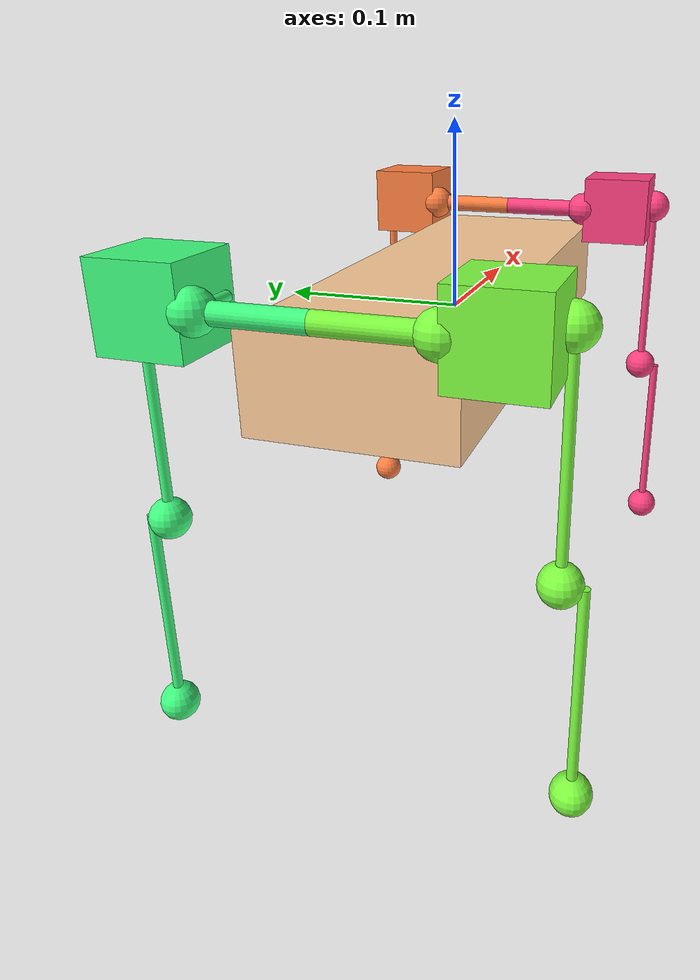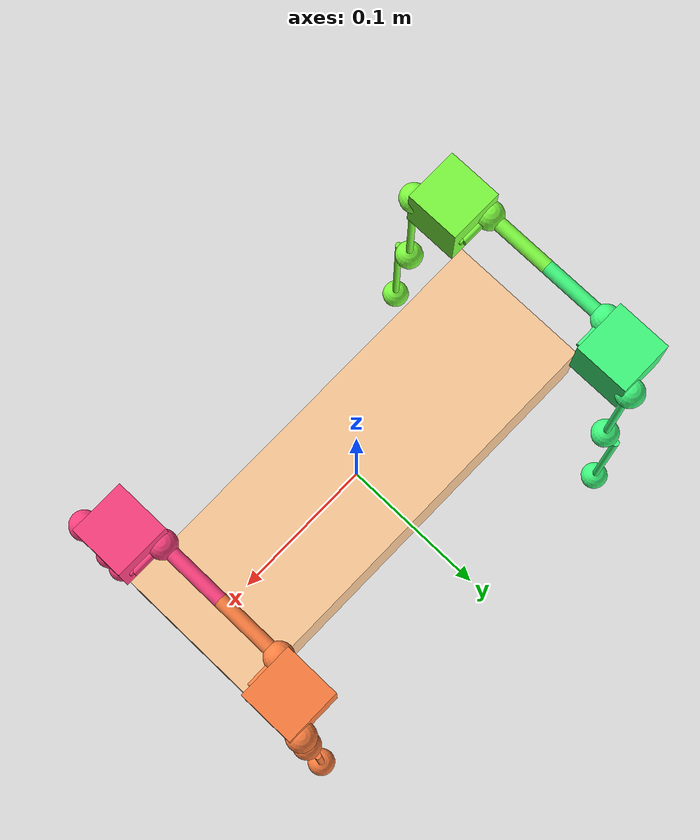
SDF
<?xml version="1.0" encoding="UTF-8"?>
<!-- |    This document was autogenerated by xacro4sdf from ../models/dot_control.sdf.xmacro | -->
<!-- |    EDITING THIS FILE BY HAND IS NOT RECOMMENDED                                 | -->
<sdf version="1.6" xmlns:drake="http://drake.mit.edu">
	<!-- Robot dimensions, all units meters.
        FORWARD IS +X
        LEFT IS +Y
        UP IS +Z -->
	<!-- Hip abduction axis forward/back from robot origin -->
	<!-- Hip abduction axis y displacement -->
	<!-- Hip abduction axis z displacement -->
	<!-- Hip abduction axis to hip axis -->
	<!-- Knee info -->
	<model name="dot">
		<link name="body">
			<inertial>
				<pose>0 0 0 0 0 0</pose>
				<mass>1.0</mass>
				<inertia>
					<ixx>0.0010416666666666669</ixx>
					<ixy>0</ixy>
					<ixz>0</ixz>
					<iyy>0.0077083333333333335</iyy>
					<iyz>0</iyz>
					<izz>0.008333333333333333</izz>
				</inertia>
			</inertial>
			<visual name="body_visual">
				<geometry>
					<box>
						<size>0.3 0.1 0.05</size>
					</box>
				</geometry>
				<material>
					<ambient>1. 0.8 0.6 1.0</ambient>
					<diffuse>1. 0.8 0.6 1.0</diffuse>
				</material>
			</visual>
			<collision name="body_collision">
				<geometry>
					<box>
						<size>0.3 0.1 0.05</size>
					</box>
				</geometry>
			</collision>
		</link>
		<!-- Pelvis -->
		<link name="left_front_pelvis">
			<pose relative_to="body">
                0.12 0 0 0 0 0
            </pose>
			<inertial>
				<pose>0 0 0 0 0 0</pose>
				<mass>0.0001</mass>
				<inertia>
					<ixx>3.3333333333333335e-11</ixx>
					<ixy>0</ixy>
					<ixz>0</ixz>
					<iyy>3.3333333333333335e-11</iyy>
					<iyz>0</iyz>
					<izz>5.000000000000001e-11</izz>
				</inertia>
			</inertial>
			<visual name="left_front_pelvis_rod_visual">
				<!-- Cylinders are along +z -->
				<pose> 0 0.025 0.038 1.57075 0 0 </pose>
				<geometry>
					<cylinder>
						<radius>0.005</radius>
						<length>0.05</length>
					</cylinder>
				</geometry>
				<material>
					<ambient>1. 0.5 0.25 1.</ambient>
					<diffuse>1. 0.5 0.25 1.</diffuse>
				</material>
			</visual>
			<visual name="left_front_pelvis_ball_visual">
				<pose>0 0.05 0.038 0 0 0 </pose>
				<geometry>
					<sphere>
						<radius>0.01</radius>
					</sphere>
				</geometry>
				<material>
					<ambient>1. 0.5 0.25 1.</ambient>
					<diffuse>1. 0.5 0.25 1.</diffuse>
				</material>
			</visual>
		</link>
		<joint name="left_front_body2pelvis" type="fixed">
			<parent>body</parent>
			<child>left_front_pelvis</child>
			<pose relative_to="body">
                0.12 0 0 0 0 0
            </pose>
		</joint>
		<!-- hip abduction-->
		<link name="left_front_hip_inner">
			<pose relative_to="left_front_pelvis">
                0 0.05 0.038 0 0 0
            </pose>
			<inertial>
				<!-- Guessing the massive servos pull the COM to right between them -->
				<pose>-0.025 0.043 0 0 0 0</pose>
				<!-- approx standin inertia -->
				<mass>0.25</mass>
				<inertia>
					<ixx>1.3411458333333335e-05</ixx>
					<ixy>0</ixy>
					<ixz>0</ixz>
					<iyy>1.3411458333333335e-05</iyy>
					<iyz>0</iyz>
					<izz>7.8125e-07</izz>
				</inertia>
				<mass>0.25</mass>
			</inertial>
			<visual name="left_front_inner_hip_rod_x_visual">
				<!-- Cylinders are along +z -->
				<pose> 0.0125 0 0 0 1.57075 0 </pose>
				<geometry>
					<cylinder>
						<radius>0.0025</radius>
						<length>0.025</length>
					</cylinder>
				</geometry>
				<material>
					<ambient>1. 0.5 0.25 1.</ambient>
					<diffuse>1. 0.5 0.25 1.</diffuse>
				</material>
			</visual>
			<visual name="left_front_inner_hip_rod_y_visual">
				<!-- Cylinders are along +z -->
				<pose> 0.025 0.0215 0 1.57075 0 0 </pose>
				<geometry>
					<cylinder>
						<radius>0.0025</radius>
						<length>0.043</length>
					</cylinder>
				</geometry>
				<material>
					<ambient>1. 0.5 0.25 1.</ambient>
					<diffuse>1. 0.5 0.25 1.</diffuse>
				</material>
			</visual>
			<visual name="left_front_inner_hip_ball_visual">
				<pose>0.025 0.043 0 0 0 0 </pose>
				<geometry>
					<sphere>
						<radius>0.01</radius>
					</sphere>
				</geometry>
				<material>
					<ambient>1. 0.5 0.25 1.</ambient>
					<diffuse>1. 0.5 0.25 1.</diffuse>
				</material>
			</visual>
			<visual name="left_front_inner_hip_box_visual">
				<pose>0.0125 0.0215 0 0 0 0</pose>
				<geometry>
					<box>
						<size>0.04 0.04 0.04</size>
					</box>
				</geometry>
				<material>
					<ambient>1. 0.5 0.25 1.</ambient>
					<diffuse>1. 0.5 0.25 1.</diffuse>
				</material>
			</visual>
		</link>
		<joint name="left_front_hip_roll" type="revolute">
			<parent>left_front_pelvis</parent>
			<child>left_front_hip_inner</child>
			<pose relative_to="left_front_pelvis">
                0 0.05 0.038 0. 0. 0
            </pose>
			<axis>
				<xyz>1.0 0. 0.</xyz>
				<limit>
					<lower>-1.57075</lower>
					<upper>1.57075</upper>
					<effort>1.96</effort>
					<!-- velocity limits not enforced by drake -->
				</limit>
				<dynamics>
					<damping>1.5e-2</damping>
				</dynamics>
			</axis>
			<drake:rotor_inertia>1e-7</drake:rotor_inertia>
			<drake:gear_ratio>300.0</drake:gear_ratio>
		</joint>
		<!-- hip-->
		<link name="left_front_hip">
			<!-- Goes straight down at base posture -->
			<pose relative_to="left_front_hip_inner">
                0.025 0.043 0 0 0 0
            </pose>
			<inertial>
				<pose>0 0 -0.055 0 0 0</pose>
				<mass>0.05</mass>
				<inertia>
					<ixx>5.049479166666667e-05</ixx>
					<ixy>0</ixy>
					<ixz>0</ixz>
					<iyy>5.049479166666667e-05</iyy>
					<iyz>0</iyz>
					<izz>1.5625e-07</izz>
				</inertia>
			</inertial>
			<visual name="left_front_hip_rod_visual">
				<!-- Cylinders are along +z -->
				<pose> 0 0 -0.055 0 0 0 </pose>
				<geometry>
					<cylinder>
						<radius>0.0025</radius>
						<length>0.11</length>
					</cylinder>
				</geometry>
				<material>
					<ambient>1. 0.5 0.25 1.</ambient>
					<diffuse>1. 0.5 0.25 1.</diffuse>
				</material>
			</visual>
			<visual name="left_front_hip_ball_vis">
				<pose>0 0 -0.11 0. 0. 0.</pose>
				<geometry>
					<sphere>
						<radius>0.01</radius>
					</sphere>
				</geometry>
				<material>
					<ambient>1. 0.5 0.25 1.</ambient>
					<diffuse>1. 0.5 0.25 1.</diffuse>
				</material>
			</visual>
			<collision name="left_front_hip_ball_vis">
				<pose>0 0 -0.11 0. 0. 0.</pose>
				<geometry>
					<sphere>
						<radius>0.01</radius>
					</sphere>
				</geometry>
			</collision>
		</link>
		<joint name="left_front_hip_pitch" type="revolute">
			<parent>left_front_hip_inner</parent>
			<child>left_front_hip</child>
			<pose relative_to="left_front_hip_inner">
                0.025 0.043 0 0 0 0
            </pose>
			<axis>
				<xyz>0. -1. 0.</xyz>
				<limit>
					<lower>-1.57075</lower>
					<upper>0.785375</upper>
					<effort>1.96</effort>
					<!-- velocity limits not enforced by drake -->
				</limit>
				<dynamics>
					<damping>1.5e-2</damping>
				</dynamics>
			</axis>
			<drake:rotor_inertia>1e-7</drake:rotor_inertia>
			<drake:gear_ratio>300.0</drake:gear_ratio>
		</joint>
		<!-- shin-->
		<link name="left_front_shin">
			<!-- Points straight down at angle=0 -->
			<pose relative_to="left_front_hip">
                0 0.01 -0.11 0 0 0
            </pose>
			<inertial>
				<pose>0 0 -0.055 0 0 0</pose>
				<mass>0.05</mass>
				<inertia>
					<ixx>5.049479166666667e-05</ixx>
					<ixy>0</ixy>
					<ixz>0</ixz>
					<iyy>5.049479166666667e-05</iyy>
					<iyz>0</iyz>
					<izz>1.5625e-07</izz>
				</inertia>
			</inertial>
			<visual name="left_front_hip_rod_visual">
				<!-- Cylinders are along +z -->
				<pose> 0 0 -0.055 0 0 0 </pose>
				<geometry>
					<cylinder>
						<radius>0.0025</radius>
						<length>0.11</length>
					</cylinder>
				</geometry>
				<material>
					<ambient>1. 0.5 0.25 1.</ambient>
					<diffuse>1. 0.5 0.25 1.</diffuse>
				</material>
			</visual>
			<visual name="left_front_shin_ball_vis">
				<pose>0 0 -0.11 0. 0. 0.</pose>
				<geometry>
					<sphere>
						<radius>0.01</radius>
					</sphere>
				</geometry>
				<material>
					<ambient>1. 0.5 0.25 1.</ambient>
					<diffuse>1. 0.5 0.25 1.</diffuse>
				</material>
			</visual>
			<collision name="left_front_shin_ball_vis">
				<pose>0 0 -0.11 0. 0. 0.</pose>
				<geometry>
					<sphere>
						<radius>0.01</radius>
					</sphere>
				</geometry>
			</collision>
		</link>
		<joint name="left_front_knee_pitch" type="revolute">
			<parent>left_front_hip</parent>
			<child>left_front_shin</child>
			<pose relative_to="left_front_hip">
                0 0.01 -0.11 0 0 0
            </pose>
			<axis>
				<!-- axis is in child frame -->
				<xyz>0 -1. 0</xyz>
				<limit>
					<lower>0.2617916666666667</lower>
					<upper>3.1415</upper>
					<effort>1.96</effort>
					<!-- velocity limits not enforced by drake -->
				</limit>
				<dynamics>
					<damping>1.5e-2</damping>
				</dynamics>
			</axis>
			<drake:rotor_inertia>1e-7</drake:rotor_inertia>
			<drake:gear_ratio>300.0</drake:gear_ratio>
		</joint>
		<!-- Pelvis -->
		<link name="right_front_pelvis">
			<pose relative_to="body">
                0.12 0 0 0 0 0
            </pose>
			<inertial>
				<pose>0 0 0 0 0 0</pose>
				<mass>0.0001</mass>
				<inertia>
					<ixx>3.3333333333333335e-11</ixx>
					<ixy>0</ixy>
					<ixz>0</ixz>
					<iyy>3.3333333333333335e-11</iyy>
					<iyz>0</iyz>
					<izz>5.000000000000001e-11</izz>
				</inertia>
			</inertial>
			<visual name="right_front_pelvis_rod_visual">
				<!-- Cylinders are along +z -->
				<pose> 0 -0.025 0.038 1.57075 0 0 </pose>
				<geometry>
					<cylinder>
						<radius>0.005</radius>
						<length>0.05</length>
					</cylinder>
				</geometry>
				<material>
					<ambient>1. 0.25 0.5 1.</ambient>
					<diffuse>1. 0.25 0.5 1.</diffuse>
				</material>
			</visual>
			<visual name="right_front_pelvis_ball_visual">
				<pose>0 -0.05 0.038 0 0 0 </pose>
				<geometry>
					<sphere>
						<radius>0.01</radius>
					</sphere>
				</geometry>
				<material>
					<ambient>1. 0.25 0.5 1.</ambient>
					<diffuse>1. 0.25 0.5 1.</diffuse>
				</material>
			</visual>
		</link>
		<joint name="right_front_body2pelvis" type="fixed">
			<parent>body</parent>
			<child>right_front_pelvis</child>
			<pose relative_to="body">
                0.12 0 0 0 0 0
            </pose>
		</joint>
		<!-- hip abduction-->
		<link name="right_front_hip_inner">
			<pose relative_to="right_front_pelvis">
                0 -0.05 0.038 0 0 0
            </pose>
			<inertial>
				<!-- Guessing the massive servos pull the COM to right between them -->
				<pose>-0.025 -0.043 0 0 0 0</pose>
				<!-- approx standin inertia -->
				<mass>0.25</mass>
				<inertia>
					<ixx>1.3411458333333335e-05</ixx>
					<ixy>0</ixy>
					<ixz>0</ixz>
					<iyy>1.3411458333333335e-05</iyy>
					<iyz>0</iyz>
					<izz>7.8125e-07</izz>
				</inertia>
				<mass>0.25</mass>
			</inertial>
			<visual name="right_front_inner_hip_rod_x_visual">
				<!-- Cylinders are along +z -->
				<pose> 0.0125 0 0 0 1.57075 0 </pose>
				<geometry>
					<cylinder>
						<radius>0.0025</radius>
						<length>0.025</length>
					</cylinder>
				</geometry>
				<material>
					<ambient>1. 0.25 0.5 1.</ambient>
					<diffuse>1. 0.25 0.5 1.</diffuse>
				</material>
			</visual>
			<visual name="right_front_inner_hip_rod_y_visual">
				<!-- Cylinders are along +z -->
				<pose> 0.025 -0.0215 0 1.57075 0 0 </pose>
				<geometry>
					<cylinder>
						<radius>0.0025</radius>
						<length>0.043</length>
					</cylinder>
				</geometry>
				<material>
					<ambient>1. 0.25 0.5 1.</ambient>
					<diffuse>1. 0.25 0.5 1.</diffuse>
				</material>
			</visual>
			<visual name="right_front_inner_hip_ball_visual">
				<pose>0.025 -0.043 0 0 0 0 </pose>
				<geometry>
					<sphere>
						<radius>0.01</radius>
					</sphere>
				</geometry>
				<material>
					<ambient>1. 0.25 0.5 1.</ambient>
					<diffuse>1. 0.25 0.5 1.</diffuse>
				</material>
			</visual>
			<visual name="right_front_inner_hip_box_visual">
				<pose>0.0125 -0.0215 0 0 0 0</pose>
				<geometry>
					<box>
						<size>0.04 0.04 0.04</size>
					</box>
				</geometry>
				<material>
					<ambient>1. 0.25 0.5 1.</ambient>
					<diffuse>1. 0.25 0.5 1.</diffuse>
				</material>
			</visual>
		</link>
		<joint name="right_front_hip_roll" type="revolute">
			<parent>right_front_pelvis</parent>
			<child>right_front_hip_inner</child>
			<pose relative_to="right_front_pelvis">
                0 -0.05 0.038 0. 0. 0
            </pose>
			<axis>
				<xyz>-1.0 0. 0.</xyz>
				<limit>
					<lower>-1.57075</lower>
					<upper>1.57075</upper>
					<effort>1.96</effort>
					<!-- velocity limits not enforced by drake -->
				</limit>
				<dynamics>
					<damping>1.5e-2</damping>
				</dynamics>
			</axis>
			<drake:rotor_inertia>1e-7</drake:rotor_inertia>
			<drake:gear_ratio>300.0</drake:gear_ratio>
		</joint>
		<!-- hip-->
		<link name="right_front_hip">
			<!-- Goes straight down at base posture -->
			<pose relative_to="right_front_hip_inner">
                0.025 -0.043 0 0 0 0
            </pose>
			<inertial>
				<pose>0 0 -0.055 0 0 0</pose>
				<mass>0.05</mass>
				<inertia>
					<ixx>5.049479166666667e-05</ixx>
					<ixy>0</ixy>
					<ixz>0</ixz>
					<iyy>5.049479166666667e-05</iyy>
					<iyz>0</iyz>
					<izz>1.5625e-07</izz>
				</inertia>
			</inertial>
			<visual name="right_front_hip_rod_visual">
				<!-- Cylinders are along +z -->
				<pose> 0 0 -0.055 0 0 0 </pose>
				<geometry>
					<cylinder>
						<radius>0.0025</radius>
						<length>0.11</length>
					</cylinder>
				</geometry>
				<material>
					<ambient>1. 0.25 0.5 1.</ambient>
					<diffuse>1. 0.25 0.5 1.</diffuse>
				</material>
			</visual>
			<visual name="right_front_hip_ball_vis">
				<pose>0 0 -0.11 0. 0. 0.</pose>
				<geometry>
					<sphere>
						<radius>0.01</radius>
					</sphere>
				</geometry>
				<material>
					<ambient>1. 0.25 0.5 1.</ambient>
					<diffuse>1. 0.25 0.5 1.</diffuse>
				</material>
			</visual>
			<collision name="right_front_hip_ball_vis">
				<pose>0 0 -0.11 0. 0. 0.</pose>
				<geometry>
					<sphere>
						<radius>0.01</radius>
					</sphere>
				</geometry>
			</collision>
		</link>
		<joint name="right_front_hip_pitch" type="revolute">
			<parent>right_front_hip_inner</parent>
			<child>right_front_hip</child>
			<pose relative_to="right_front_hip_inner">
                0.025 -0.043 0 0 0 0
            </pose>
			<axis>
				<xyz>0. -1. 0.</xyz>
				<limit>
					<lower>-1.57075</lower>
					<upper>0.785375</upper>
					<effort>1.96</effort>
					<!-- velocity limits not enforced by drake -->
				</limit>
				<dynamics>
					<damping>1.5e-2</damping>
				</dynamics>
			</axis>
			<drake:rotor_inertia>1e-7</drake:rotor_inertia>
			<drake:gear_ratio>300.0</drake:gear_ratio>
		</joint>
		<!-- shin-->
		<link name="right_front_shin">
			<!-- Points straight down at angle=0 -->
			<pose relative_to="right_front_hip">
                0 -0.01 -0.11 0 0 0
            </pose>
			<inertial>
				<pose>0 0 -0.055 0 0 0</pose>
				<mass>0.05</mass>
				<inertia>
					<ixx>5.049479166666667e-05</ixx>
					<ixy>0</ixy>
					<ixz>0</ixz>
					<iyy>5.049479166666667e-05</iyy>
					<iyz>0</iyz>
					<izz>1.5625e-07</izz>
				</inertia>
			</inertial>
			<visual name="right_front_hip_rod_visual">
				<!-- Cylinders are along +z -->
				<pose> 0 0 -0.055 0 0 0 </pose>
				<geometry>
					<cylinder>
						<radius>0.0025</radius>
						<length>0.11</length>
					</cylinder>
				</geometry>
				<material>
					<ambient>1. 0.25 0.5 1.</ambient>
					<diffuse>1. 0.25 0.5 1.</diffuse>
				</material>
			</visual>
			<visual name="right_front_shin_ball_vis">
				<pose>0 0 -0.11 0. 0. 0.</pose>
				<geometry>
					<sphere>
						<radius>0.01</radius>
					</sphere>
				</geometry>
				<material>
					<ambient>1. 0.25 0.5 1.</ambient>
					<diffuse>1. 0.25 0.5 1.</diffuse>
				</material>
			</visual>
			<collision name="right_front_shin_ball_vis">
				<pose>0 0 -0.11 0. 0. 0.</pose>
				<geometry>
					<sphere>
						<radius>0.01</radius>
					</sphere>
				</geometry>
			</collision>
		</link>
		<joint name="right_front_knee_pitch" type="revolute">
			<parent>right_front_hip</parent>
			<child>right_front_shin</child>
			<pose relative_to="right_front_hip">
                0 -0.01 -0.11 0 0 0
            </pose>
			<axis>
				<!-- axis is in child frame -->
				<xyz>0 -1. 0</xyz>
				<limit>
					<lower>0.2617916666666667</lower>
					<upper>3.1415</upper>
					<effort>1.96</effort>
					<!-- velocity limits not enforced by drake -->
				</limit>
				<dynamics>
					<damping>1.5e-2</damping>
				</dynamics>
			</axis>
			<drake:rotor_inertia>1e-7</drake:rotor_inertia>
			<drake:gear_ratio>300.0</drake:gear_ratio>
		</joint>
		<!-- Pelvis -->
		<link name="left_back_pelvis">
			<pose relative_to="body">
                -0.175 0 0 0 0 0
            </pose>
			<inertial>
				<pose>0 0 0 0 0 0</pose>
				<mass>0.0001</mass>
				<inertia>
					<ixx>3.3333333333333335e-11</ixx>
					<ixy>0</ixy>
					<ixz>0</ixz>
					<iyy>3.3333333333333335e-11</iyy>
					<iyz>0</iyz>
					<izz>5.000000000000001e-11</izz>
				</inertia>
			</inertial>
			<visual name="left_back_pelvis_rod_visual">
				<!-- Cylinders are along +z -->
				<pose> 0 0.025 0.038 1.57075 0 0 </pose>
				<geometry>
					<cylinder>
						<radius>0.005</radius>
						<length>0.05</length>
					</cylinder>
				</geometry>
				<material>
					<ambient>0.25 1.0 0.5 1.0</ambient>
					<diffuse>0.25 1.0 0.5 1.0</diffuse>
				</material>
			</visual>
			<visual name="left_back_pelvis_ball_visual">
				<pose>0 0.05 0.038 0 0 0 </pose>
				<geometry>
					<sphere>
						<radius>0.01</radius>
					</sphere>
				</geometry>
				<material>
					<ambient>0.25 1.0 0.5 1.0</ambient>
					<diffuse>0.25 1.0 0.5 1.0</diffuse>
				</material>
			</visual>
		</link>
		<joint name="left_back_body2pelvis" type="fixed">
			<parent>body</parent>
			<child>left_back_pelvis</child>
			<pose relative_to="body">
                -0.175 0 0 0 0 0
            </pose>
		</joint>
		<!-- hip abduction-->
		<link name="left_back_hip_inner">
			<pose relative_to="left_back_pelvis">
                0 0.05 0.038 0 0 0
            </pose>
			<inertial>
				<!-- Guessing the massive servos pull the COM to right between them -->
				<pose>-0.025 0.043 0 0 0 0</pose>
				<!-- approx standin inertia -->
				<mass>0.25</mass>
				<inertia>
					<ixx>1.3411458333333335e-05</ixx>
					<ixy>0</ixy>
					<ixz>0</ixz>
					<iyy>1.3411458333333335e-05</iyy>
					<iyz>0</iyz>
					<izz>7.8125e-07</izz>
				</inertia>
				<mass>0.25</mass>
			</inertial>
			<visual name="left_back_inner_hip_rod_x_visual">
				<!-- Cylinders are along +z -->
				<pose> 0.0125 0 0 0 1.57075 0 </pose>
				<geometry>
					<cylinder>
						<radius>0.0025</radius>
						<length>0.025</length>
					</cylinder>
				</geometry>
				<material>
					<ambient>0.25 1.0 0.5 1.0</ambient>
					<diffuse>0.25 1.0 0.5 1.0</diffuse>
				</material>
			</visual>
			<visual name="left_back_inner_hip_rod_y_visual">
				<!-- Cylinders are along +z -->
				<pose> 0.025 0.0215 0 1.57075 0 0 </pose>
				<geometry>
					<cylinder>
						<radius>0.0025</radius>
						<length>0.043</length>
					</cylinder>
				</geometry>
				<material>
					<ambient>0.25 1.0 0.5 1.0</ambient>
					<diffuse>0.25 1.0 0.5 1.0</diffuse>
				</material>
			</visual>
			<visual name="left_back_inner_hip_ball_visual">
				<pose>0.025 0.043 0 0 0 0 </pose>
				<geometry>
					<sphere>
						<radius>0.01</radius>
					</sphere>
				</geometry>
				<material>
					<ambient>0.25 1.0 0.5 1.0</ambient>
					<diffuse>0.25 1.0 0.5 1.0</diffuse>
				</material>
			</visual>
			<visual name="left_back_inner_hip_box_visual">
				<pose>0.0125 0.0215 0 0 0 0</pose>
				<geometry>
					<box>
						<size>0.04 0.04 0.04</size>
					</box>
				</geometry>
				<material>
					<ambient>0.25 1.0 0.5 1.0</ambient>
					<diffuse>0.25 1.0 0.5 1.0</diffuse>
				</material>
			</visual>
		</link>
		<joint name="left_back_hip_roll" type="revolute">
			<parent>left_back_pelvis</parent>
			<child>left_back_hip_inner</child>
			<pose relative_to="left_back_pelvis">
                0 0.05 0.038 0. 0. 0
            </pose>
			<axis>
				<xyz>1.0 0. 0.</xyz>
				<limit>
					<lower>-1.57075</lower>
					<upper>1.57075</upper>
					<effort>1.96</effort>
					<!-- velocity limits not enforced by drake -->
				</limit>
				<dynamics>
					<damping>1.5e-2</damping>
				</dynamics>
			</axis>
			<drake:rotor_inertia>1e-7</drake:rotor_inertia>
			<drake:gear_ratio>300.0</drake:gear_ratio>
		</joint>
		<!-- hip-->
		<link name="left_back_hip">
			<!-- Goes straight down at base posture -->
			<pose relative_to="left_back_hip_inner">
                0.025 0.043 0 0 0 0
            </pose>
			<inertial>
				<pose>0 0 -0.055 0 0 0</pose>
				<mass>0.05</mass>
				<inertia>
					<ixx>5.049479166666667e-05</ixx>
					<ixy>0</ixy>
					<ixz>0</ixz>
					<iyy>5.049479166666667e-05</iyy>
					<iyz>0</iyz>
					<izz>1.5625e-07</izz>
				</inertia>
			</inertial>
			<visual name="left_back_hip_rod_visual">
				<!-- Cylinders are along +z -->
				<pose> 0 0 -0.055 0 0 0 </pose>
				<geometry>
					<cylinder>
						<radius>0.0025</radius>
						<length>0.11</length>
					</cylinder>
				</geometry>
				<material>
					<ambient>0.25 1.0 0.5 1.0</ambient>
					<diffuse>0.25 1.0 0.5 1.0</diffuse>
				</material>
			</visual>
			<visual name="left_back_hip_ball_vis">
				<pose>0 0 -0.11 0. 0. 0.</pose>
				<geometry>
					<sphere>
						<radius>0.01</radius>
					</sphere>
				</geometry>
				<material>
					<ambient>0.25 1.0 0.5 1.0</ambient>
					<diffuse>0.25 1.0 0.5 1.0</diffuse>
				</material>
			</visual>
			<collision name="left_back_hip_ball_vis">
				<pose>0 0 -0.11 0. 0. 0.</pose>
				<geometry>
					<sphere>
						<radius>0.01</radius>
					</sphere>
				</geometry>
			</collision>
		</link>
		<joint name="left_back_hip_pitch" type="revolute">
			<parent>left_back_hip_inner</parent>
			<child>left_back_hip</child>
			<pose relative_to="left_back_hip_inner">
                0.025 0.043 0 0 0 0
            </pose>
			<axis>
				<xyz>0. -1. 0.</xyz>
				<limit>
					<lower>-1.57075</lower>
					<upper>0.785375</upper>
					<effort>1.96</effort>
					<!-- velocity limits not enforced by drake -->
				</limit>
				<dynamics>
					<damping>1.5e-2</damping>
				</dynamics>
			</axis>
			<drake:rotor_inertia>1e-7</drake:rotor_inertia>
			<drake:gear_ratio>300.0</drake:gear_ratio>
		</joint>
		<!-- shin-->
		<link name="left_back_shin">
			<!-- Points straight down at angle=0 -->
			<pose relative_to="left_back_hip">
                0 0.01 -0.11 0 0 0
            </pose>
			<inertial>
				<pose>0 0 -0.055 0 0 0</pose>
				<mass>0.05</mass>
				<inertia>
					<ixx>5.049479166666667e-05</ixx>
					<ixy>0</ixy>
					<ixz>0</ixz>
					<iyy>5.049479166666667e-05</iyy>
					<iyz>0</iyz>
					<izz>1.5625e-07</izz>
				</inertia>
			</inertial>
			<visual name="left_back_hip_rod_visual">
				<!-- Cylinders are along +z -->
				<pose> 0 0 -0.055 0 0 0 </pose>
				<geometry>
					<cylinder>
						<radius>0.0025</radius>
						<length>0.11</length>
					</cylinder>
				</geometry>
				<material>
					<ambient>0.25 1.0 0.5 1.0</ambient>
					<diffuse>0.25 1.0 0.5 1.0</diffuse>
				</material>
			</visual>
			<visual name="left_back_shin_ball_vis">
				<pose>0 0 -0.11 0. 0. 0.</pose>
				<geometry>
					<sphere>
						<radius>0.01</radius>
					</sphere>
				</geometry>
				<material>
					<ambient>0.25 1.0 0.5 1.0</ambient>
					<diffuse>0.25 1.0 0.5 1.0</diffuse>
				</material>
			</visual>
			<collision name="left_back_shin_ball_vis">
				<pose>0 0 -0.11 0. 0. 0.</pose>
				<geometry>
					<sphere>
						<radius>0.01</radius>
					</sphere>
				</geometry>
			</collision>
		</link>
		<joint name="left_back_knee_pitch" type="revolute">
			<parent>left_back_hip</parent>
			<child>left_back_shin</child>
			<pose relative_to="left_back_hip">
                0 0.01 -0.11 0 0 0
            </pose>
			<axis>
				<!-- axis is in child frame -->
				<xyz>0 -1. 0</xyz>
				<limit>
					<lower>0.2617916666666667</lower>
					<upper>3.1415</upper>
					<effort>1.96</effort>
					<!-- velocity limits not enforced by drake -->
				</limit>
				<dynamics>
					<damping>1.5e-2</damping>
				</dynamics>
			</axis>
			<drake:rotor_inertia>1e-7</drake:rotor_inertia>
			<drake:gear_ratio>300.0</drake:gear_ratio>
		</joint>
		<!-- Pelvis -->
		<link name="right_back_pelvis">
			<pose relative_to="body">
                -0.175 0 0 0 0 0
            </pose>
			<inertial>
				<pose>0 0 0 0 0 0</pose>
				<mass>0.0001</mass>
				<inertia>
					<ixx>3.3333333333333335e-11</ixx>
					<ixy>0</ixy>
					<ixz>0</ixz>
					<iyy>3.3333333333333335e-11</iyy>
					<iyz>0</iyz>
					<izz>5.000000000000001e-11</izz>
				</inertia>
			</inertial>
			<visual name="right_back_pelvis_rod_visual">
				<!-- Cylinders are along +z -->
				<pose> 0 -0.025 0.038 1.57075 0 0 </pose>
				<geometry>
					<cylinder>
						<radius>0.005</radius>
						<length>0.05</length>
					</cylinder>
				</geometry>
				<material>
					<ambient>0.5 1.0 0.25 1.0</ambient>
					<diffuse>0.5 1.0 0.25 1.0</diffuse>
				</material>
			</visual>
			<visual name="right_back_pelvis_ball_visual">
				<pose>0 -0.05 0.038 0 0 0 </pose>
				<geometry>
					<sphere>
						<radius>0.01</radius>
					</sphere>
				</geometry>
				<material>
					<ambient>0.5 1.0 0.25 1.0</ambient>
					<diffuse>0.5 1.0 0.25 1.0</diffuse>
				</material>
			</visual>
		</link>
		<joint name="right_back_body2pelvis" type="fixed">
			<parent>body</parent>
			<child>right_back_pelvis</child>
			<pose relative_to="body">
                -0.175 0 0 0 0 0
            </pose>
		</joint>
		<!-- hip abduction-->
		<link name="right_back_hip_inner">
			<pose relative_to="right_back_pelvis">
                0 -0.05 0.038 0 0 0
            </pose>
			<inertial>
				<!-- Guessing the massive servos pull the COM to right between them -->
				<pose>-0.025 -0.043 0 0 0 0</pose>
				<!-- approx standin inertia -->
				<mass>0.25</mass>
				<inertia>
					<ixx>1.3411458333333335e-05</ixx>
					<ixy>0</ixy>
					<ixz>0</ixz>
					<iyy>1.3411458333333335e-05</iyy>
					<iyz>0</iyz>
					<izz>7.8125e-07</izz>
				</inertia>
				<mass>0.25</mass>
			</inertial>
			<visual name="right_back_inner_hip_rod_x_visual">
				<!-- Cylinders are along +z -->
				<pose> 0.0125 0 0 0 1.57075 0 </pose>
				<geometry>
					<cylinder>
						<radius>0.0025</radius>
						<length>0.025</length>
					</cylinder>
				</geometry>
				<material>
					<ambient>0.5 1.0 0.25 1.0</ambient>
					<diffuse>0.5 1.0 0.25 1.0</diffuse>
				</material>
			</visual>
			<visual name="right_back_inner_hip_rod_y_visual">
				<!-- Cylinders are along +z -->
				<pose> 0.025 -0.0215 0 1.57075 0 0 </pose>
				<geometry>
					<cylinder>
						<radius>0.0025</radius>
						<length>0.043</length>
					</cylinder>
				</geometry>
				<material>
					<ambient>0.5 1.0 0.25 1.0</ambient>
					<diffuse>0.5 1.0 0.25 1.0</diffuse>
				</material>
			</visual>
			<visual name="right_back_inner_hip_ball_visual">
				<pose>0.025 -0.043 0 0 0 0 </pose>
				<geometry>
					<sphere>
						<radius>0.01</radius>
					</sphere>
				</geometry>
				<material>
					<ambient>0.5 1.0 0.25 1.0</ambient>
					<diffuse>0.5 1.0 0.25 1.0</diffuse>
				</material>
			</visual>
			<visual name="right_back_inner_hip_box_visual">
				<pose>0.0125 -0.0215 0 0 0 0</pose>
				<geometry>
					<box>
						<size>0.04 0.04 0.04</size>
					</box>
				</geometry>
				<material>
					<ambient>0.5 1.0 0.25 1.0</ambient>
					<diffuse>0.5 1.0 0.25 1.0</diffuse>
				</material>
			</visual>
		</link>
		<joint name="right_back_hip_roll" type="revolute">
			<parent>right_back_pelvis</parent>
			<child>right_back_hip_inner</child>
			<pose relative_to="right_back_pelvis">
                0 -0.05 0.038 0. 0. 0
            </pose>
			<axis>
				<xyz>-1.0 0. 0.</xyz>
				<limit>
					<lower>-1.57075</lower>
					<upper>1.57075</upper>
					<effort>1.96</effort>
					<!-- velocity limits not enforced by drake -->
				</limit>
				<dynamics>
					<damping>1.5e-2</damping>
				</dynamics>
			</axis>
			<drake:rotor_inertia>1e-7</drake:rotor_inertia>
			<drake:gear_ratio>300.0</drake:gear_ratio>
		</joint>
		<!-- hip-->
		<link name="right_back_hip">
			<!-- Goes straight down at base posture -->
			<pose relative_to="right_back_hip_inner">
                0.025 -0.043 0 0 0 0
            </pose>
			<inertial>
				<pose>0 0 -0.055 0 0 0</pose>
				<mass>0.05</mass>
				<inertia>
					<ixx>5.049479166666667e-05</ixx>
					<ixy>0</ixy>
					<ixz>0</ixz>
					<iyy>5.049479166666667e-05</iyy>
					<iyz>0</iyz>
					<izz>1.5625e-07</izz>
				</inertia>
			</inertial>
			<visual name="right_back_hip_rod_visual">
				<!-- Cylinders are along +z -->
				<pose> 0 0 -0.055 0 0 0 </pose>
				<geometry>
					<cylinder>
						<radius>0.0025</radius>
						<length>0.11</length>
					</cylinder>
				</geometry>
				<material>
					<ambient>0.5 1.0 0.25 1.0</ambient>
					<diffuse>0.5 1.0 0.25 1.0</diffuse>
				</material>
			</visual>
			<visual name="right_back_hip_ball_vis">
				<pose>0 0 -0.11 0. 0. 0.</pose>
				<geometry>
					<sphere>
						<radius>0.01</radius>
					</sphere>
				</geometry>
				<material>
					<ambient>0.5 1.0 0.25 1.0</ambient>
					<diffuse>0.5 1.0 0.25 1.0</diffuse>
				</material>
			</visual>
			<collision name="right_back_hip_ball_vis">
				<pose>0 0 -0.11 0. 0. 0.</pose>
				<geometry>
					<sphere>
						<radius>0.01</radius>
					</sphere>
				</geometry>
			</collision>
		</link>
		<joint name="right_back_hip_pitch" type="revolute">
			<parent>right_back_hip_inner</parent>
			<child>right_back_hip</child>
			<pose relative_to="right_back_hip_inner">
                0.025 -0.043 0 0 0 0
            </pose>
			<axis>
				<xyz>0. -1. 0.</xyz>
				<limit>
					<lower>-1.57075</lower>
					<upper>0.785375</upper>
					<effort>1.96</effort>
					<!-- velocity limits not enforced by drake -->
				</limit>
				<dynamics>
					<damping>1.5e-2</damping>
				</dynamics>
			</axis>
			<drake:rotor_inertia>1e-7</drake:rotor_inertia>
			<drake:gear_ratio>300.0</drake:gear_ratio>
		</joint>
		<!-- shin-->
		<link name="right_back_shin">
			<!-- Points straight down at angle=0 -->
			<pose relative_to="right_back_hip">
                0 -0.01 -0.11 0 0 0
            </pose>
			<inertial>
				<pose>0 0 -0.055 0 0 0</pose>
				<mass>0.05</mass>
				<inertia>
					<ixx>5.049479166666667e-05</ixx>
					<ixy>0</ixy>
					<ixz>0</ixz>
					<iyy>5.049479166666667e-05</iyy>
					<iyz>0</iyz>
					<izz>1.5625e-07</izz>
				</inertia>
			</inertial>
			<visual name="right_back_hip_rod_visual">
				<!-- Cylinders are along +z -->
				<pose> 0 0 -0.055 0 0 0 </pose>
				<geometry>
					<cylinder>
						<radius>0.0025</radius>
						<length>0.11</length>
					</cylinder>
				</geometry>
				<material>
					<ambient>0.5 1.0 0.25 1.0</ambient>
					<diffuse>0.5 1.0 0.25 1.0</diffuse>
				</material>
			</visual>
			<visual name="right_back_shin_ball_vis">
				<pose>0 0 -0.11 0. 0. 0.</pose>
				<geometry>
					<sphere>
						<radius>0.01</radius>
					</sphere>
				</geometry>
				<material>
					<ambient>0.5 1.0 0.25 1.0</ambient>
					<diffuse>0.5 1.0 0.25 1.0</diffuse>
				</material>
			</visual>
			<collision name="right_back_shin_ball_vis">
				<pose>0 0 -0.11 0. 0. 0.</pose>
				<geometry>
					<sphere>
						<radius>0.01</radius>
					</sphere>
				</geometry>
			</collision>
		</link>
		<joint name="right_back_knee_pitch" type="revolute">
			<parent>right_back_hip</parent>
			<child>right_back_shin</child>
			<pose relative_to="right_back_hip">
                0 -0.01 -0.11 0 0 0
            </pose>
			<axis>
				<!-- axis is in child frame -->
				<xyz>0 -1. 0</xyz>
				<limit>
					<lower>0.2617916666666667</lower>
					<upper>3.1415</upper>
					<effort>1.96</effort>
					<!-- velocity limits not enforced by drake -->
				</limit>
				<dynamics>
					<damping>1.5e-2</damping>
				</dynamics>
			</axis>
			<drake:rotor_inertia>1e-7</drake:rotor_inertia>
			<drake:gear_ratio>300.0</drake:gear_ratio>
		</joint>
		--&gt;

	</model>
</sdf>
